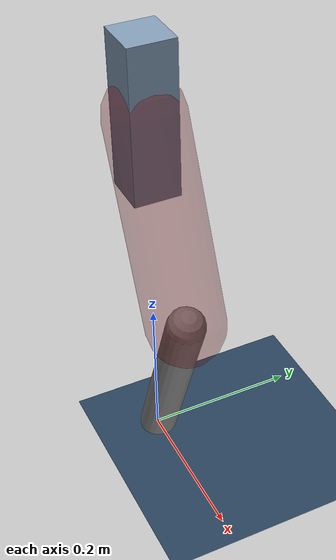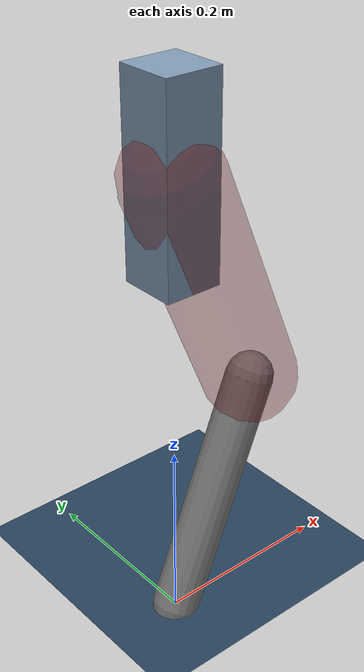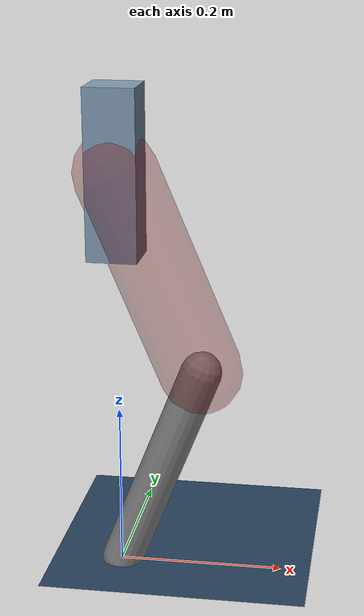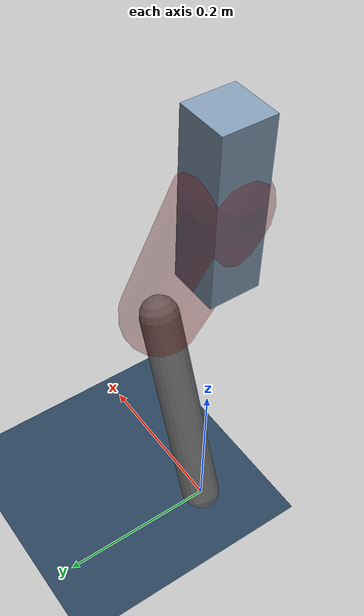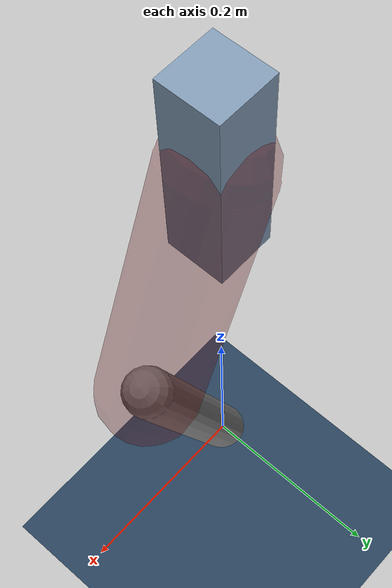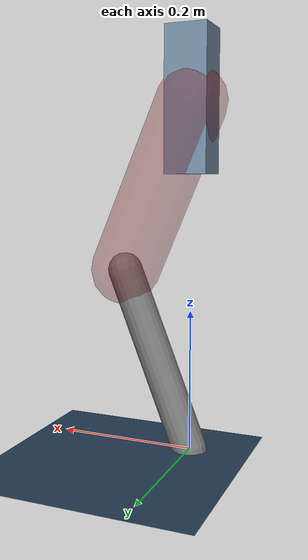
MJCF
<mujoco model="Hopper2D">
	<compiler inertiafromgeom="true" angle="radian" />
	<option timestep="0.001" integrator="implicit" cone="elliptic" solver="Newton" tolerance="1e-10" />

	<default>
		<geom contype="1" conaffinity="1" condim="3" friction="2 0.005 0.0001" solref="0.005 1" />
		<joint limited="true" damping="0.1" />
	</default>

	<asset>
		<texture name="skybox" type="skybox" builtin="gradient" rgb1=".4 .6 .8" rgb2="0 0 0" width="800" height="800" />
		<texture name="grid" type="2d" builtin="checker" rgb1=".1 .2 .3" rgb2=".2 .3 .4" width="300" height="300" mark="edge" markrgb=".2 .3 .4" />
		<material name="ground" texture="grid" texrepeat="1 1" texuniform="true" reflectance="0.1" />
		<material name="leg" rgba="0.5 0.6 0.7 1" />
	</asset>

	<worldbody>

		<geom name="floor" type="plane" size="5 5 0.25" material="ground" />

		<light directional="false" diffuse="0.8 0.8 0.8" specular="0.3 0.3 0.3" pos="0 0 2" dir="0 0 -1" />
		<light mode="targetbodycom" target="base" directional="false" diffuse="0.8 0.8 0.8" specular="0.3 0.3 0.3" pos="0 0 2" dir="0 0 -1" />

		<camera name="fixed" pos="0 -2 1" xyaxes="1 0 0 0 0 1" />
		<camera name="tracking" mode="trackcom" pos="0 -3 1" />

		<body name="root" pos="0 0 0.49285509849375697">
			<joint name="slide_x" type="slide" axis="1 0 0" range="-100 100" />
			<joint name="slide_z" type="slide" axis="0 0 1" range="0 10" />

			<body name="base" pos="0 0 0">
				<geom name="torso" type="box" size="0.03 0.03 0.1" mass="4.349" material="leg" />

				<body name="link1" pos="0 0 0" euler="0 1.1717139388131879 0">
					<joint type="hinge" axis="0 -1 0" pos="0 0 0" name="hinge1" limited="true" range="-3.14 3.14" stiffness="0" damping="0.1" />
					<geom name="thigh" type="capsule" fromto="0 0 0 0.2584471145225156 0 0" size="0.05" rgba="0.5 0 0 0.3" mass="0.8783624977585406" />

					<body name="link2" pos="0.2584471145225156 0 0" euler="0 0.7746332041677071 0">
						<joint type="hinge" axis="0 -1 0" pos="0 0 0" name="hinge2" limited="true" range="-3.14 3.14" stiffness="0" damping="0.1" />
						<geom name="shank" type="capsule" fromto="0 0 0 0.27379954954290786 0 0" size="0.025" mass="0.46203963963432626" />

					</body>
				</body>
			</body>
		</body>
	</worldbody>

	<actuator>
		<motor name="torque1" joint="hinge1" ctrlrange="-53.32143779445108 53.32143779445108" ctrllimited="true" gear="1" />
		<motor name="torque2" joint="hinge2" ctrlrange="-375.09795934887194 375.09795934887194" ctrllimited="true" gear="1" />
	</actuator>
</mujoco>
